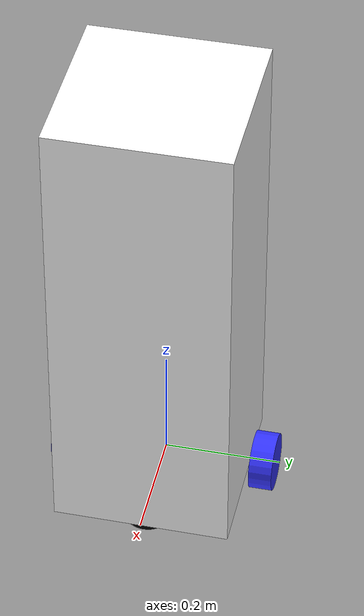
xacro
<?xml version="1.0"?>
<robot xmlns:xacro="http://www.ros.org/wiki/xacro" >

    <material name="white">
        <color rgba="1 1 1 1" />
    </material>

    <material name="orange">
        <color rgba="1 0.3 0.1 1"/>
    </material>

    <material name="blue">
        <color rgba="0.2 0.2 1 1"/>
    </material>

    <material name="black">
        <color rgba="0 0 0 1"/>
    </material>

    <!-- BASE LINK -->

    <link name="base_link">

    </link>

    <!-- CHASSIS LINK -->

    <joint name="chassis_joint" type="fixed">
        <parent link="base_link"/>
        <child link="chassis"/>
        <origin xyz="-0.1 0 0"/>  <!-- origin behind bse link -->
    </joint>

    <link name="chassis">
        <visual>  <!-- สร้างแบบจำลองที่เห็นในโปรแกรม -->
            <origin xyz="0.15 0 0.4"/>  <!-- ตั้ง origin ใหม่ -->
            <geometry>
                <box size="0.3 0.3 0.8"/>  <!-- size in meter -->
            </geometry>
            <material name="white"/>  <!-- set color to white-->
        </visual>
    </link>
        <collision>
            <origin xyz="0.15 0 0.075"/>
            <geometry>
                <box size="0.4 0.4 0.75"/>
            </geometry>
        </collision>
        <xacro:inertial_box mass="0.5" x="0.3" y="0.3" z="0.15">
            <origin xyz="0.15 0 0.075" rpy="0 0 0"/>
        </xacro:inertial_box>

    <!-- LEFT WHEEL LINK -->

    <joint name="left_wheel_joint" type="continuous">
        <parent link="base_link"/>
        <child link="left_wheel"/>
        <origin xyz="0 0.175 0" rpy="-${pi/2} 0 0" />
        <axis xyz="0 0 1"/>
    </joint>

    <link name="left_wheel">
        <visual>
            <geometry>
                <cylinder radius="0.05" length="0.04"/>
            </geometry>
            <material name="blue"/>
        </visual>
        <collision>
            <geometry>
                <cylinder radius="0.05" length="0.04"/>
            </geometry>
        </collision>
        <xacro:inertial_cylinder mass="0.1" length="0.04" radius="0.05">
            <origin xyz="0 0 0" rpy="0 0 0"/>
        </xacro:inertial_cylinder>
    </link>

    <!-- RIGHT WHEEL LINK -->

    <joint name="right_wheel_joint" type="continuous">
        <parent link="base_link"/>
        <child link="right_wheel"/>
        <origin xyz="0 -0.175 0" rpy="${pi/2} 0 0" />
        <axis xyz="0 0 -1"/>
    </joint>

    <link name="right_wheel">
        <visual>
            <geometry>
                <cylinder radius="0.05" length="0.04"/>
            </geometry>
            <material name="blue"/>
        </visual>
        <collision>
            <geometry>
                <cylinder radius="0.05" length="0.04"/>
            </geometry>
        </collision>
        <xacro:inertial_cylinder mass="0.1" length="0.04" radius="0.05">
            <origin xyz="0 0 0" rpy="0 0 0"/>
        </xacro:inertial_cylinder>
    </link>

    <!-- CASTER WHEEL LINK -->

    <joint name="caster_wheel_joint" type="fixed">
        <parent link="chassis"/>
        <child link="caster_wheel"/>
        <origin xyz="0.24 0 0"/>
    </joint>

    <link name="caster_wheel">
        <visual>
            <geometry>
                <sphere radius="0.05"/>
            </geometry>
            <material name="black"/>
        </visual>
        <collision>
            <geometry>
                <sphere radius="0.05"/>
            </geometry>
        </collision>
        <xacro:inertial_sphere mass="0.1" radius="0.05">
            <origin xyz="0 0 0" rpy="0 0 0"/>
        </xacro:inertial_sphere>
    </link>

</robot>
